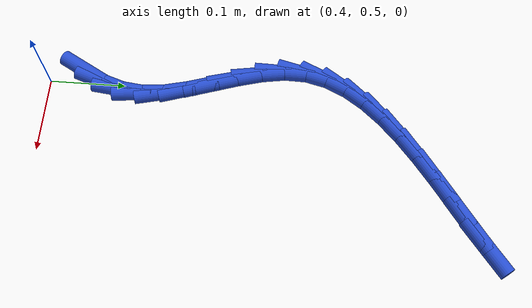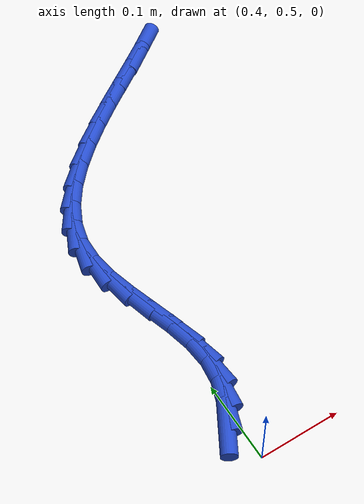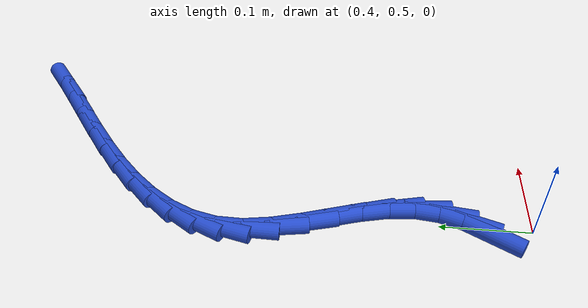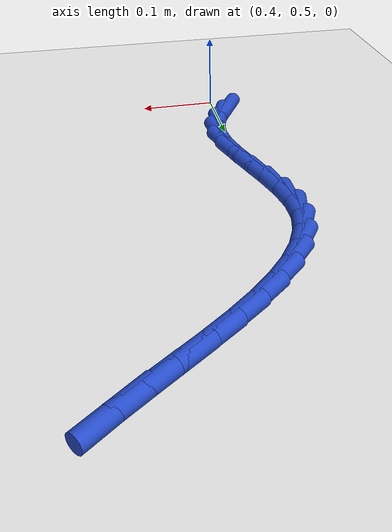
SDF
<sdf version="1.6">
 <world name="default">
  <model name="ground_plane">
   <static>1</static>
   <link name="link">
    <collision name="collision">
     <geometry><plane><normal>0 0 1</normal><size>100 100</size></plane></geometry>
     <surface><friction><ode><mu>100</mu><mu2>50</mu2></ode></friction></surface>
    </collision>
    <visual name="visual">
     <cast_shadows>0</cast_shadows>
     <geometry><plane><normal>0 0 1</normal><size>100 100</size></plane></geometry>
     <material>
      <script><uri>file://media/materials/scripts/gazebo.material</uri><name>Gazebo/WhiteGlow</name></script>
     </material>
    </visual>
   </link>
  </model>
  <model name="line">
   <link name="link_22">
    <pose>0.38787420223421204 0.5502467667098541 0.01 0 1.57 1.0566043031465027</pose>
    <collision name="collision">
     <geometry><cylinder><radius>0.01</radius><length>0.08</length></cylinder></geometry>
    </collision>
    <visual name="visual">
     <material>
      <script><name>Gazebo/Blue</name><uri>file://media/materials/scripts/gazebo.material</uri></script>
     </material>
     <geometry><cylinder><radius>0.01</radius><length>0.08</length></cylinder></geometry>
    </visual>
   </link>
   <link name="link_23">
    <pose>0.40133173019612356 0.5740706576912057 0.01 0 1.57 1.2417643785597179</pose>
    <collision name="collision">
     <geometry><cylinder><radius>0.01</radius><length>0.08</length></cylinder></geometry>
    </collision>
    <visual name="visual">
     <material>
      <script><name>Gazebo/Blue</name><uri>file://media/materials/scripts/gazebo.material</uri></script>
     </material>
     <geometry><cylinder><radius>0.01</radius><length>0.08</length></cylinder></geometry>
    </visual>
   </link>
   <link name="link_24">
    <pose>0.4099647520955449 0.5993545462342467 0.01 0 1.57 1.4525236130481365</pose>
    <collision name="collision">
     <geometry><cylinder><radius>0.01</radius><length>0.08</length></cylinder></geometry>
    </collision>
    <visual name="visual">
     <material>
      <script><name>Gazebo/Blue</name><uri>file://media/materials/scripts/gazebo.material</uri></script>
     </material>
     <geometry><cylinder><radius>0.01</radius><length>0.08</length></cylinder></geometry>
    </visual>
   </link>
   <link name="link_25">
    <pose>0.41316830353615036 0.6263142720574757 0.01 0 1.57 -1.4799108557381302</pose>
    <collision name="collision">
     <geometry><cylinder><radius>0.01</radius><length>0.08</length></cylinder></geometry>
    </collision>
    <visual name="visual">
     <material>
      <script><name>Gazebo/Blue</name><uri>file://media/materials/scripts/gazebo.material</uri></script>
     </material>
     <geometry><cylinder><radius>0.01</radius><length>0.08</length></cylinder></geometry>
    </visual>
   </link>
   <link name="link_26">
    <pose>0.4105444815305706 0.6551042820495876 0.01 0 1.57 -1.337546073702736</pose>
    <collision name="collision">
     <geometry><cylinder><radius>0.01</radius><length>0.08</length></cylinder></geometry>
    </collision>
    <visual name="visual">
     <material>
      <script><name>Gazebo/Blue</name><uri>file://media/materials/scripts/gazebo.material</uri></script>
     </material>
     <geometry><cylinder><radius>0.01</radius><length>0.08</length></cylinder></geometry>
    </visual>
   </link>
   <link name="link_27">
    <pose>0.4033497213102262 0.6853885188318901 0.01 0 1.57 -1.2689618991153977</pose>
    <collision name="collision">
     <geometry><cylinder><radius>0.01</radius><length>0.08</length></cylinder></geometry>
    </collision>
    <visual name="visual">
     <material>
      <script><name>Gazebo/Blue</name><uri>file://media/materials/scripts/gazebo.material</uri></script>
     </material>
     <geometry><cylinder><radius>0.01</radius><length>0.08</length></cylinder></geometry>
    </visual>
   </link>
   <link name="link_28">
    <pose>0.3936334113282727 0.716595817757613 0.01 0 1.57 -1.2586515629719093</pose>
    <collision name="collision">
     <geometry><cylinder><radius>0.01</radius><length>0.08</length></cylinder></geometry>
    </collision>
    <visual name="visual">
     <material>
      <script><name>Gazebo/Blue</name><uri>file://media/materials/scripts/gazebo.material</uri></script>
     </material>
     <geometry><cylinder><radius>0.01</radius><length>0.08</length></cylinder></geometry>
    </visual>
   </link>
   <link name="link_29">
    <pose>0.38344992591930827 0.748153535887279 0.01 0 1.57 -1.3030525129866226</pose>
    <collision name="collision">
     <geometry><cylinder><radius>0.01</radius><length>0.08</length></cylinder></geometry>
    </collision>
    <visual name="visual">
     <material>
      <script><name>Gazebo/Blue</name><uri>file://media/materials/scripts/gazebo.material</uri></script>
     </material>
     <geometry><cylinder><radius>0.01</radius><length>0.08</length></cylinder></geometry>
    </visual>
   </link>
   <link name="link_30">
    <pose>0.37485363941793093 0.7794890302814096 0.01 0 1.57 -1.4099640663923607</pose>
    <collision name="collision">
     <geometry><cylinder><radius>0.01</radius><length>0.08</length></cylinder></geometry>
    </collision>
    <visual name="visual">
     <material>
      <script><name>Gazebo/Blue</name><uri>file://media/materials/scripts/gazebo.material</uri></script>
     </material>
     <geometry><cylinder><radius>0.01</radius><length>0.08</length></cylinder></geometry>
    </visual>
   </link>
   <link name="link_31">
    <pose>0.36989892615873876 0.8100296580005276 0.01 0 1.57 1.547256196846472</pose>
    <collision name="collision">
     <geometry><cylinder><radius>0.01</radius><length>0.08</length></cylinder></geometry>
    </collision>
    <visual name="visual">
     <material>
      <script><name>Gazebo/Blue</name><uri>file://media/materials/scripts/gazebo.material</uri></script>
     </material>
     <geometry><cylinder><radius>0.01</radius><length>0.08</length></cylinder></geometry>
    </visual>
   </link>
   <link name="link_32">
    <pose>0.37058610890254545 0.8392162346817138 0.01 0 1.57 1.3230002201486062</pose>
    <collision name="collision">
     <geometry><cylinder><radius>0.01</radius><length>0.08</length></cylinder></geometry>
    </collision>
    <visual name="visual">
     <material>
      <script><name>Gazebo/Blue</name><uri>file://media/materials/scripts/gazebo.material</uri></script>
     </material>
     <geometry><cylinder><radius>0.01</radius><length>0.08</length></cylinder></geometry>
    </visual>
   </link>
   <link name="link_33">
    <pose>0.37757085197509865 0.8668243893120926 0.01 0 1.57 1.1238958005347761</pose>
    <collision name="collision">
     <geometry><cylinder><radius>0.01</radius><length>0.08</length></cylinder></geometry>
    </collision>
    <visual name="visual">
     <material>
      <script><name>Gazebo/Blue</name><uri>file://media/materials/scripts/gazebo.material</uri></script>
     </material>
     <geometry><cylinder><radius>0.01</radius><length>0.08</length></cylinder></geometry>
    </visual>
   </link>
   <link name="link_34">
    <pose>0.3901052485337616 0.8929792332102517 0.01 0 1.57 0.9633147970958522</pose>
    <collision name="collision">
     <geometry><cylinder><radius>0.01</radius><length>0.08</length></cylinder></geometry>
    </collision>
    <visual name="visual">
     <material>
      <script><name>Gazebo/Blue</name><uri>file://media/materials/scripts/gazebo.material</uri></script>
     </material>
     <geometry><cylinder><radius>0.01</radius><length>0.08</length></cylinder></geometry>
    </visual>
   </link>
   <link name="link_35">
    <pose>0.4073755508236865 0.9178222717587395 0.01 0 1.57 0.8406248482329952</pose>
    <collision name="collision">
     <geometry><cylinder><radius>0.01</radius><length>0.08</length></cylinder></geometry>
    </collision>
    <visual name="visual">
     <material>
      <script><name>Gazebo/Blue</name><uri>file://media/materials/scripts/gazebo.material</uri></script>
     </material>
     <geometry><cylinder><radius>0.01</radius><length>0.08</length></cylinder></geometry>
    </visual>
   </link>
   <link name="link_36">
    <pose>0.4285680110900251 0.9414950103401034 0.01 0 1.57 0.7501176114586856</pose>
    <collision name="collision">
     <geometry><cylinder><radius>0.01</radius><length>0.08</length></cylinder></geometry>
    </collision>
    <visual name="visual">
     <material>
      <script><name>Gazebo/Blue</name><uri>file://media/materials/scripts/gazebo.material</uri></script>
     </material>
     <geometry><cylinder><radius>0.01</radius><length>0.08</length></cylinder></geometry>
    </visual>
   </link>
   <link name="link_37">
    <pose>0.45286888157792937 0.9641389543368902 0.01 0 1.57 0.6856545789041404</pose>
    <collision name="collision">
     <geometry><cylinder><radius>0.01</radius><length>0.08</length></cylinder></geometry>
    </collision>
    <visual name="visual">
     <material>
      <script><name>Gazebo/Blue</name><uri>file://media/materials/scripts/gazebo.material</uri></script>
     </material>
     <geometry><cylinder><radius>0.01</radius><length>0.08</length></cylinder></geometry>
    </visual>
   </link>
   <link name="link_38">
    <pose>0.4794644145325515 0.9858956091316484 0.01 0 1.57 0.6424411069628106</pose>
    <collision name="collision">
     <geometry><cylinder><radius>0.01</radius><length>0.08</length></cylinder></geometry>
    </collision>
    <visual name="visual">
     <material>
      <script><name>Gazebo/Blue</name><uri>file://media/materials/scripts/gazebo.material</uri></script>
     </material>
     <geometry><cylinder><radius>0.01</radius><length>0.08</length></cylinder></geometry>
    </visual>
   </link>
   <link name="link_39">
    <pose>0.5075408621990434 1.0069064801069247 0.01 0 1.57 0.6173741135556308</pose>
    <collision name="collision">
     <geometry><cylinder><radius>0.01</radius><length>0.08</length></cylinder></geometry>
    </collision>
    <visual name="visual">
     <material>
      <script><name>Gazebo/Blue</name><uri>file://media/materials/scripts/gazebo.material</uri></script>
     </material>
     <geometry><cylinder><radius>0.01</radius><length>0.08</length></cylinder></geometry>
    </visual>
   </link>
   <link name="link_40">
    <pose>0.536284476822557 1.027313072645267 0.01 0 1.57 0.6089847023817875</pose>
    <collision name="collision">
     <geometry><cylinder><radius>0.01</radius><length>0.08</length></cylinder></geometry>
    </collision>
    <visual name="visual">
     <material>
      <script><name>Gazebo/Blue</name><uri>file://media/materials/scripts/gazebo.material</uri></script>
     </material>
     <geometry><cylinder><radius>0.01</radius><length>0.08</length></cylinder></geometry>
    </visual>
   </link>
   <link name="link_41">
    <pose>0.5648815106482443 1.047256892129223 0.01 0 1.57 0.6174177051610813</pose>
    <collision name="collision">
     <geometry><cylinder><radius>0.01</radius><length>0.08</length></cylinder></geometry>
    </collision>
    <visual name="visual">
     <material>
      <script><name>Gazebo/Blue</name><uri>file://media/materials/scripts/gazebo.material</uri></script>
     </material>
     <geometry><cylinder><radius>0.01</radius><length>0.08</length></cylinder></geometry>
    </visual>
   </link>
   <link name="link_42">
    <pose>0.5925182159212574 1.0668794439413396 0.01 0 1.57 0.6433077660875999</pose>
    <collision name="collision">
     <geometry><cylinder><radius>0.01</radius><length>0.08</length></cylinder></geometry>
    </collision>
    <visual name="visual">
     <material>
      <script><name>Gazebo/Blue</name><uri>file://media/materials/scripts/gazebo.material</uri></script>
     </material>
     <geometry><cylinder><radius>0.01</radius><length>0.08</length></cylinder></geometry>
    </visual>
   </link>
  </model>
 </world>
</sdf>
